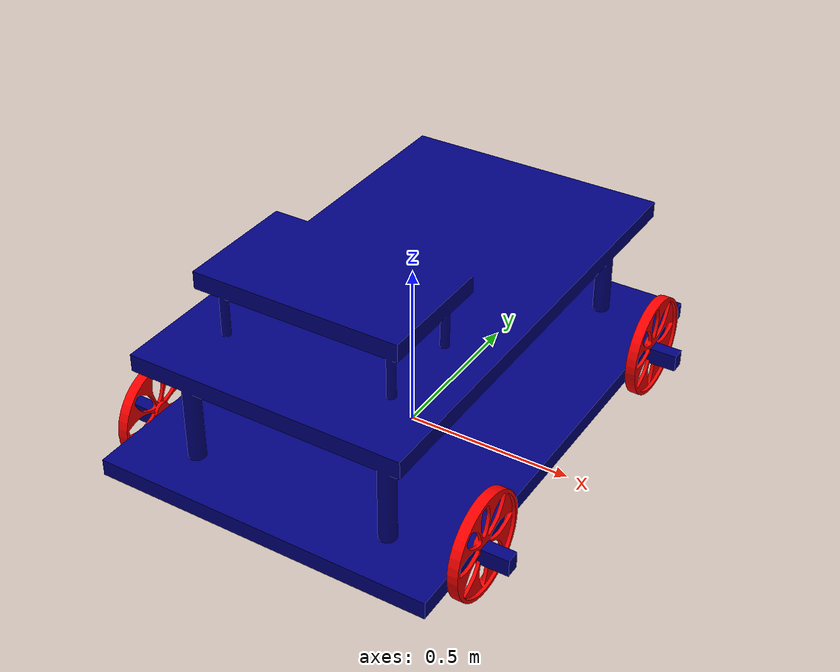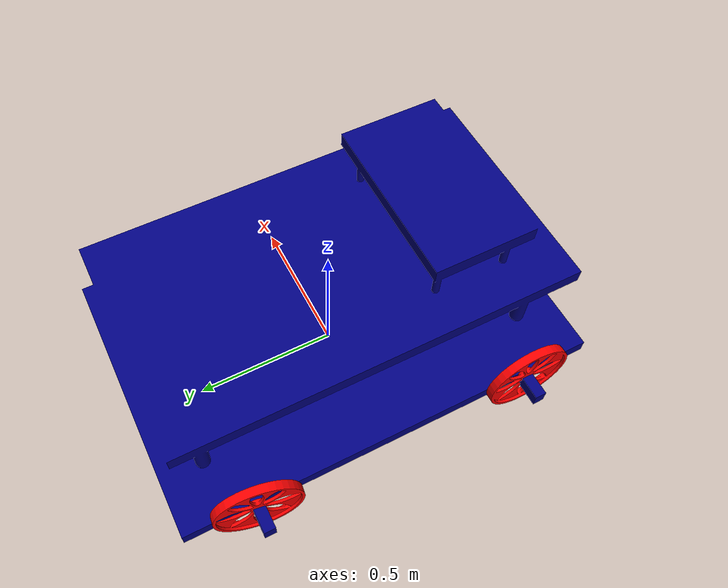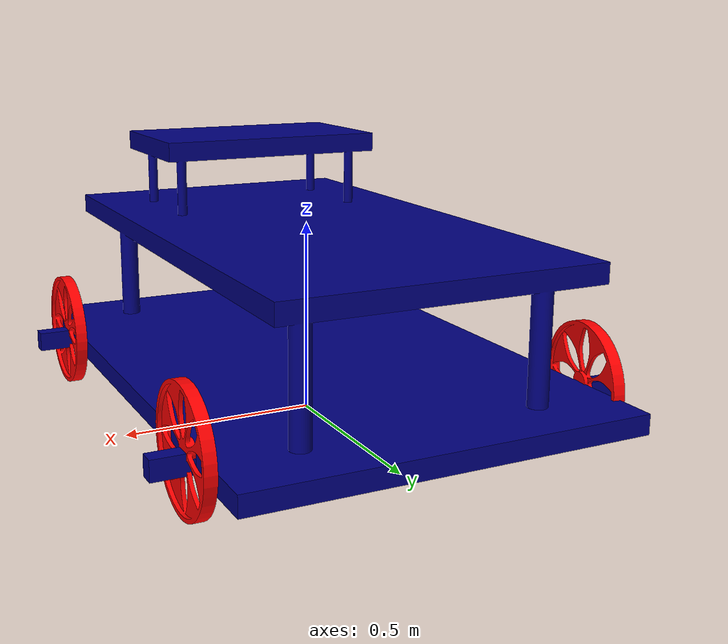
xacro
<?xml version="1.0"?>
<robot name="chocolate_bot" xmlns:xacro="http://www.ros.org/wiki/xacro">

    <xacro:include filename="$(find robot_descriptions)/urdf/common_parameters.xacro" />
    <xacro:include filename="$(find robot_descriptions)/urdf/plugins/skid_steer_drive.xacro" />
    <xacro:include filename="chocolate_bot_base.xacro" />

</robot>

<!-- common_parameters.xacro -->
<robot xmlns:xacro="http://www.ros.org/wiki/xacro">

    <material name="Blue">
        <color rgba="0.0 0.0 0.5 1" />
    </material>

    <material name="Grey">
        <color rgba="0.5 0.5 0.5 1" />
    </material>

    <material name="Orange">
        <color rgba="1.0 0.5 0.0 1" />
    </material>

    <material name="Yellow">
        <color rgba="1.0 1.0 0.0 1" />
    </material>

    <material name="Red">
        <color rgba="1.0 0.0 0.0 1" />
    </material>

    <material name="Black">
        <color rgba="0.0 0.0 0.0 1" />
    </material>

    <xacro:macro name="box_inertia" params="mass length width height xyz rpy">
        <inertial>
            <origin xyz="${xyz}" rpy="${rpy}" />
            <mass value="${mass}" />
            <inertia ixx="${(mass/12) * (height * height + length * length)}" ixy="0" ixz="0"
                     iyy="${(mass/12) * (width * width + length * length)}" iyz="0"
                     izz="${(mass/12) * (width * width + height * height)}" />
        </inertial>
    </xacro:macro>

    <xacro:macro name="cylinder_inertia" params="mass radius height xyz rpy">
        <inertial>
            <origin xyz="${xyz}" rpy="${rpy}" />
            <mass value="${mass}" />
            <inertia ixx="${(mass/12) * (3 * radius * radius + height * height)}" ixy="0" ixz="0"
                     iyy="${(mass/12) * (3 * radius * radius + height * height)}" iyz="0"
                     izz="${(mass/2) * (radius * radius)}" />
        </inertial>
    </xacro:macro>

    <xacro:macro name="sphere_inertia" params="mass radius xyz rpy">
        <inertial>
            <origin xyz="${xyz}" rpy="${rpy}" />
            <mass value="${mass}" />
            <inertia ixx="${(2/5) * mass * radius * radius}" ixy="0" ixz="0"
                     iyy="${(2/5) * mass * radius * radius}" iyz="0"
                     izz="${(2/5) * mass * radius * radius}" />
        </inertial>
    </xacro:macro>

</robot>

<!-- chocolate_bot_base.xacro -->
<robot xmlns:xacro="http://www.ros.org/wiki/xacro">

    <xacro:skid_steer_drive leftFrontJoint = "base_front_left_wheel_joint" rightFrontJoint = "base_front_right_wheel_joint"
                            leftRearJoint = "base_back_left_wheel_joint" rightRearJoint = "base_back_right_wheel_joint"
                            robotBaseFrame = "base_link" wheelDiameter = "0.165" wheelSeparation = "1" />

<!-- ********************** Base footprint link and joint ********************** -->
    <link name="base_footprint"/>

    <joint name="base_joint" type="fixed">
        <origin xyz="0.0 0.0 0.1" rpy="0.0 0.0 0.0"/>
        <parent link="base_footprint"/>
        <child link="base_link"/>
    </joint>

<!-- ********************** Base link ********************** -->
    <link name="base_link">

        <visual>
            <origin xyz="0.0 0.0 0" rpy="0.0 0.0 0.0"/>
            <geometry>
                <mesh filename="file:///$(find robot_descriptions)/urdf/chocolate_bot/meshes/base_link.dae" scale="10 10 10"/>
            </geometry>
            <material name="Blue"/>
        </visual>

        <collision>
            <origin xyz="0.0 0.0 0.2" rpy="0.0 0.0 1.57"/>
            <geometry>
                <box size="1.5 1.0 0.6"/>
            </geometry>
        </collision>

        <xacro:box_inertia mass="1.5" length="1.5" width="1.0" height="0.6"
                            xyz="0.0 0.0 0.3" rpy="1.57 0 0.0" />

    </link>

    <gazebo reference="base_link">
        <material>Gazebo/Blue</material>
    </gazebo>

<!-- ********************** Wheel links and joints ********************** -->
    <xacro:macro name="wheel_link" params="prefix xyz rpy Jrpy">
        <link name="${prefix}_wheel_link">

            <visual name="rim">
                <origin xyz="0 0 0" rpy="${rpy}" />
                <geometry>
                    <mesh filename="file:///$(find robot_descriptions)/urdf/chocolate_bot/meshes/wheel_rim.dae"  scale="10 10 10"/>
                </geometry>
                <material name="Red" />
            </visual>

            <collision>
                <origin xyz="0.015 0 0" rpy="0 1.57 0" />
                <geometry>
                    <cylinder radius="0.15" length="0.03"/>
                </geometry>
            </collision>

            <xacro:cylinder_inertia mass="0.05" radius="0.15" height="0.03"
                                    xyz="0.015 0 0" rpy="0 1.57 0" />
        </link>

        <joint name="base_${prefix}_wheel_joint" type="continuous">
            <origin xyz="${xyz}" rpy="${Jrpy}"/>
            <parent link="base_link"/>
            <child link="${prefix}_wheel_link"/>
            <axis xyz="1 0.0 0.0"/>
        </joint>

        <gazebo reference="wheel_link">
            <material>Gazebo/Red</material>
        </gazebo>

    </xacro:macro>

    <xacro:wheel_link prefix="front_right" xyz="0.5 0.5 0.05" rpy="0 0 0" Jrpy="0 0 0"/>
    <xacro:wheel_link prefix="back_right" xyz="0.5 -0.5 0.05" rpy="0 0 0" Jrpy="0 0 0"/>
    <xacro:wheel_link prefix="front_left" xyz="-0.5 0.5 0.05" rpy="0 0 3.014" Jrpy="0 0 0"/>
    <xacro:wheel_link prefix="back_left" xyz="-0.5 -0.5 0.05" rpy="0 0 3.14" Jrpy="0 0 0"/>

</robot>
